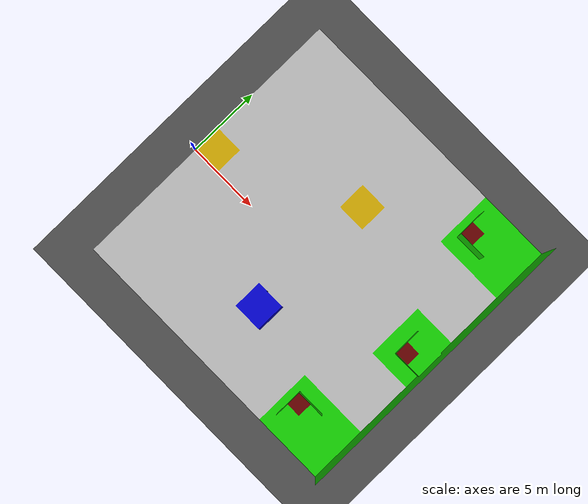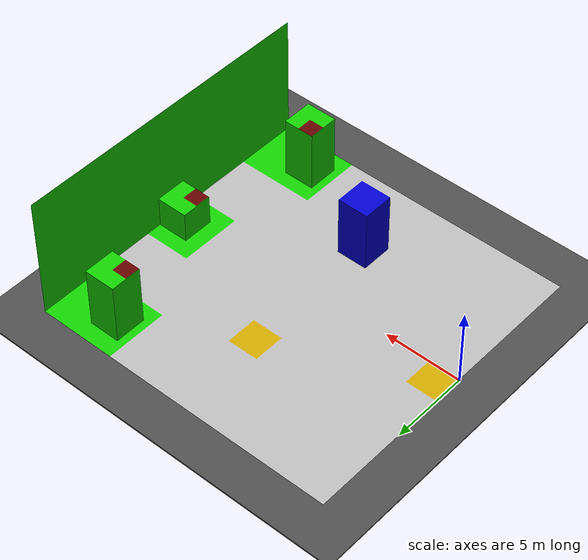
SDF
<sdf version="1.6">
 <world name="default">
  <light name="sun" type="directional">
   <pose>0 0 10 0 -0 0</pose>
   <diffuse>0.8 0.8 0.8 1</diffuse>
   <specular>0.2 0.2 0.2 1</specular>
   <attenuation>
    <range>1000</range>
    <constant>0.9</constant>
    <linear>0.01</linear>
    <quadratic>0.001</quadratic>
   </attenuation>
   <direction>-0.5 0.1 -0.9</direction>
  </light>
  <model name="ground_plane">
   <static>1</static>
   <link name="link">
    <collision name="collision">
     <geometry><plane><normal>0 0 1</normal><size>100 100</size></plane></geometry>
     <surface>
      <contact><collide_bitmask>65535</collide_bitmask></contact>
      <friction><ode><mu>100</mu><mu2>50</mu2></ode></friction>
     </surface>
    </collision>
    <visual name="visual">
     <cast_shadows>0</cast_shadows>
     <geometry><plane><normal>0 0 1</normal><size>100 100</size></plane></geometry>
     <material>
      <script><uri>file://media/materials/scripts/gazebo.material</uri><name>Gazebo/Grey</name></script>
     </material>
    </visual>
   </link>
  </model>
  <model name="asphalt_plane">
   <static>1</static>
   <link name="link">
    <collision name="collision"><geometry><box><size>200 200 0.1</size></box></geometry></collision>
    <visual name="visual">
     <cast_shadows>0</cast_shadows>
     <geometry><box><size>200 200 0.1</size></box></geometry>
     <material>
      <script>
       <uri>model://asphalt_plane/materials/scripts</uri>
       <uri>model://asphalt_plane/materials/textures</uri>
       <name>vrc/asphalt</name>
      </script>
     </material>
    </visual>
   </link>
  </model>
  <model name="Arena_KRTI_2021">
   <pose>0 0.979914 0.06 0 -0 0</pose>
   <static>1</static>
   <link name="link">
    <collision name="collision">
     <geometry><mesh><uri>model://ArenaKRTI/meshes/Arena_KRTI_2021.dae</uri></mesh></geometry>
    </collision>
    <visual name="visual">
     <geometry><mesh><uri>model://ArenaKRTI/meshes/Arena_KRTI_2021.dae</uri></mesh></geometry>
    </visual>
   </link>
  </model>
  <physics name="default_physics" default="0" type="ode">
   <ode>
    <solver>
     <type>quick</type>
     <iters>10</iters>
     <sor>1.3</sor>
     <use_dynamic_moi_rescaling>0</use_dynamic_moi_rescaling>
    </solver>
    <constraints>
     <cfm>0</cfm>
     <erp>0.2</erp>
     <contact_max_correcting_vel>100</contact_max_correcting_vel>
     <contact_surface_layer>0.001</contact_surface_layer>
    </constraints>
   </ode>
   <max_step_size>0.004</max_step_size>
   <real_time_factor>1</real_time_factor>
   <real_time_update_rate>250</real_time_update_rate>
  </physics>
  <gravity>0 0 -9.8066</gravity>
  <magnetic_field>6e-06 2.3e-05 -4.2e-05</magnetic_field>
  <atmosphere type="adiabatic"/>
  <scene><ambient>0.4 0.4 0.4 1</ambient><background>0.7 0.7 0.7 1</background><shadows>1</shadows></scene>
  <spherical_coordinates>
   <surface_model>EARTH_WGS84</surface_model>
   <latitude_deg>0</latitude_deg>
   <longitude_deg>0</longitude_deg>
   <elevation>0</elevation>
   <heading_deg>0</heading_deg>
  </spherical_coordinates>
  <light name="user_point_light_0" type="point">
   <pose>-8.95916 1.65415 1 0 -0 0</pose>
   <diffuse>0.5 0.5 0.5 1</diffuse>
   <specular>0.1 0.1 0.1 1</specular>
   <attenuation>
    <range>20</range>
    <constant>0.5</constant>
    <linear>0.01</linear>
    <quadratic>0.001</quadratic>
   </attenuation>
   <cast_shadows>0</cast_shadows>
   <direction>0 0 -1</direction>
  </light>
  <light name="user_point_light_1" type="point">
   <pose>18.007 -1.24462 1 0 -0 0</pose>
   <diffuse>0.5 0.5 0.5 1</diffuse>
   <specular>0.1 0.1 0.1 1</specular>
   <attenuation>
    <range>20</range>
    <constant>0.5</constant>
    <linear>0.01</linear>
    <quadratic>0.001</quadratic>
   </attenuation>
   <cast_shadows>0</cast_shadows>
   <direction>0 0 -1</direction>
  </light>
  <light name="user_spot_light_0" type="spot">
   <pose>19.8781 7.20571 1 0 -0 0</pose>
   <diffuse>0.5 0.5 0.5 1</diffuse>
   <specular>0.1 0.1 0.1 1</specular>
   <direction>0 0 -1</direction>
   <attenuation>
    <range>20</range>
    <constant>0.5</constant>
    <linear>0.01</linear>
    <quadratic>0.001</quadratic>
   </attenuation>
   <cast_shadows>0</cast_shadows>
   <spot><inner_angle>0.6</inner_angle><outer_angle>1</outer_angle><falloff>1</falloff></spot>
  </light>
  <light name="user_directional_light_0" type="directional">
   <pose>23.0299 7.29705 1 0 -0 0</pose>
   <diffuse>0.5 0.5 0.5 1</diffuse>
   <specular>0.1 0.1 0.1 1</specular>
   <direction>0.1 0.1 -0.9</direction>
   <attenuation>
    <range>20</range>
    <constant>0.5</constant>
    <linear>0.01</linear>
    <quadratic>0.001</quadratic>
   </attenuation>
  </light>
  <light name="user_point_light_2" type="point">
   <pose>12.6221 -4.40618 1 0 -0 0</pose>
   <diffuse>0.5 0.5 0.5 1</diffuse>
   <specular>0.1 0.1 0.1 1</specular>
   <attenuation>
    <range>20</range>
    <constant>0.5</constant>
    <linear>0.01</linear>
    <quadratic>0.001</quadratic>
   </attenuation>
   <cast_shadows>0</cast_shadows>
   <direction>0 0 -1</direction>
  </light>
  <light name="user_point_light_3" type="point">
   <pose>27.2425 -2.14735 1 0 -0 0</pose>
   <diffuse>0.5 0.5 0.5 1</diffuse>
   <specular>0.1 0.1 0.1 1</specular>
   <attenuation>
    <range>20</range>
    <constant>0.5</constant>
    <linear>0.01</linear>
    <quadratic>0.001</quadratic>
   </attenuation>
   <cast_shadows>0</cast_shadows>
   <direction>0 0 -1</direction>
  </light>
  <light name="user_point_light_4" type="point">
   <pose>17.5709 0.716696 1 0 -0 0</pose>
   <diffuse>0.5 0.5 0.5 1</diffuse>
   <specular>0.1 0.1 0.1 1</specular>
   <attenuation>
    <range>20</range>
    <constant>0.5</constant>
    <linear>0.01</linear>
    <quadratic>0.001</quadratic>
   </attenuation>
   <cast_shadows>0</cast_shadows>
   <direction>0 0 -1</direction>
  </light>
  <light name="user_point_light_5" type="point">
   <pose>11.0901 -2.20524 1 0 -0 0</pose>
   <diffuse>0.5 0.5 0.5 1</diffuse>
   <specular>0.1 0.1 0.1 1</specular>
   <attenuation>
    <range>20</range>
    <constant>0.5</constant>
    <linear>0.01</linear>
    <quadratic>0.001</quadratic>
   </attenuation>
   <cast_shadows>0</cast_shadows>
   <direction>0 0 -1</direction>
  </light>
  <light name="user_point_light_6" type="point">
   <pose>16.3626 -0.032904 1 0 -0 0</pose>
   <diffuse>0.5 0.5 0.5 1</diffuse>
   <specular>0.1 0.1 0.1 1</specular>
   <attenuation>
    <range>20</range>
    <constant>0.5</constant>
    <linear>0.01</linear>
    <quadratic>0.001</quadratic>
   </attenuation>
   <cast_shadows>0</cast_shadows>
   <direction>0 0 -1</direction>
  </light>
  <light name="user_point_light_7" type="point">
   <pose>18.1269 -6.30319 1 0 -0 0</pose>
   <diffuse>0.5 0.5 0.5 1</diffuse>
   <specular>0.1 0.1 0.1 1</specular>
   <attenuation>
    <range>20</range>
    <constant>0.5</constant>
    <linear>0.01</linear>
    <quadratic>0.001</quadratic>
   </attenuation>
   <cast_shadows>0</cast_shadows>
   <direction>0 0 -1</direction>
  </light>
  <light name="user_point_light_8" type="point">
   <pose>7.36109 3.87778 1 0 -0 0</pose>
   <diffuse>0.5 0.5 0.5 1</diffuse>
   <specular>0.1 0.1 0.1 1</specular>
   <attenuation>
    <range>20</range>
    <constant>0.5</constant>
    <linear>0.01</linear>
    <quadratic>0.001</quadratic>
   </attenuation>
   <cast_shadows>0</cast_shadows>
   <direction>0 0 -1</direction>
  </light>
  <light name="user_point_light_9" type="point">
   <pose>3.89147 -1.27243 1 0 -0 0</pose>
   <diffuse>0.5 0.5 0.5 1</diffuse>
   <specular>0.1 0.1 0.1 1</specular>
   <attenuation>
    <range>20</range>
    <constant>0.5</constant>
    <linear>0.01</linear>
    <quadratic>0.001</quadratic>
   </attenuation>
   <cast_shadows>0</cast_shadows>
   <direction>0 0 -1</direction>
  </light>
  <light name="user_point_light_10" type="point">
   <pose>11.387 -1.87155 1 0 -0 0</pose>
   <diffuse>0.5 0.5 0.5 1</diffuse>
   <specular>0.1 0.1 0.1 1</specular>
   <attenuation>
    <range>20</range>
    <constant>0.5</constant>
    <linear>0.01</linear>
    <quadratic>0.001</quadratic>
   </attenuation>
   <cast_shadows>0</cast_shadows>
   <direction>0 0 -1</direction>
  </light>
  <light name="user_point_light_11" type="point">
   <pose>7.46012 4.42887 1 0 -0 0</pose>
   <diffuse>0.5 0.5 0.5 1</diffuse>
   <specular>0.1 0.1 0.1 1</specular>
   <attenuation>
    <range>20</range>
    <constant>0.5</constant>
    <linear>0.01</linear>
    <quadratic>0.001</quadratic>
   </attenuation>
   <cast_shadows>0</cast_shadows>
   <direction>0 0 -1</direction>
  </light>
  <light name="user_point_light_12" type="point">
   <pose>2.24997 -3.3012 1 0 -0 0</pose>
   <diffuse>0.5 0.5 0.5 1</diffuse>
   <specular>0.1 0.1 0.1 1</specular>
   <attenuation>
    <range>20</range>
    <constant>0.5</constant>
    <linear>0.01</linear>
    <quadratic>0.001</quadratic>
   </attenuation>
   <cast_shadows>0</cast_shadows>
   <direction>0 0 -1</direction>
  </light>
  <light name="user_point_light_13" type="point">
   <pose>0.45335 4.00163 1 0 -0 0</pose>
   <diffuse>0.5 0.5 0.5 1</diffuse>
   <specular>0.1 0.1 0.1 1</specular>
   <attenuation>
    <range>20</range>
    <constant>0.5</constant>
    <linear>0.01</linear>
    <quadratic>0.001</quadratic>
   </attenuation>
   <cast_shadows>0</cast_shadows>
   <direction>0 0 -1</direction>
  </light>
 </world>
</sdf>
